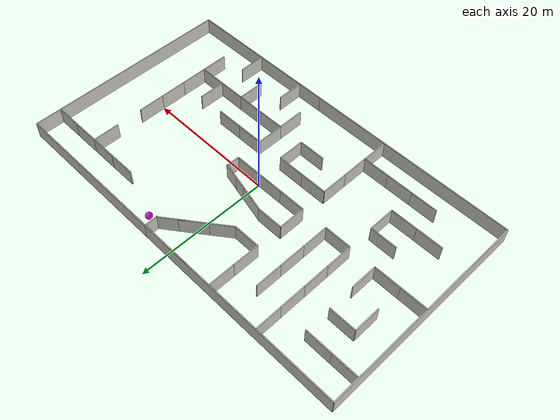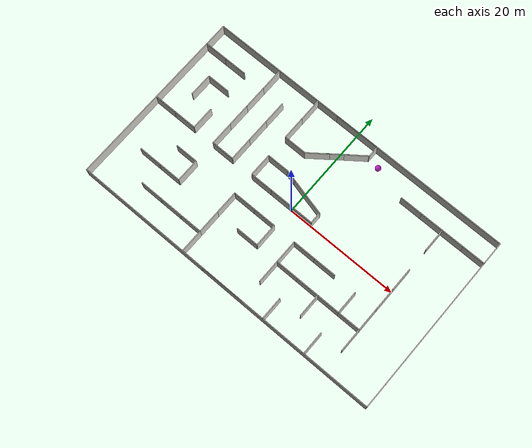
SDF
<sdf version="1.8">
 <world name="semantic_segmentation_world">
  <model name="maze_walls">
   <static>true</static>
   <link name="maze_wall_link">
    <collision name="w1_collision">
     <pose>28.000000 0.000147 1.250000 0.000000 0.000000 1.570800</pose>
     <geometry><box><size>32.000000 0.150000 2.500000</size></box></geometry>
     <surface><friction><ode><mu>1.0</mu><mu2>1.0</mu2></ode></friction></surface>
    </collision>
    <visual name="w1_visual">
     <pose>28.000000 0.000147 1.250000 0.000000 0.000000 1.570800</pose>
     <geometry><box><size>32.000000 0.150000 2.500000</size></box></geometry>
     <material>
      <ambient>0.5472 0.5472 0.5184 1.0</ambient>
      <diffuse>0.76 0.76 0.72 1.0</diffuse>
      <specular>0.04 0.04 0.04 1.0</specular>
     </material>
    </visual>
    <collision name="w2_collision">
     <pose>-28.000000 -0.000059 1.250000 0.000000 0.000000 1.570800</pose>
     <geometry><box><size>32.000000 0.150000 2.500000</size></box></geometry>
     <surface><friction><ode><mu>1.0</mu><mu2>1.0</mu2></ode></friction></surface>
    </collision>
    <visual name="w2_visual">
     <pose>-28.000000 -0.000059 1.250000 0.000000 0.000000 1.570800</pose>
     <geometry><box><size>32.000000 0.150000 2.500000</size></box></geometry>
     <material>
      <ambient>0.5472 0.5472 0.5184 1.0</ambient>
      <diffuse>0.76 0.76 0.72 1.0</diffuse>
      <specular>0.04 0.04 0.04 1.0</specular>
     </material>
    </visual>
    <collision name="w3_collision">
     <pose>-12.000059 16.000000 1.250000 0.000000 0.000000 3.141600</pose>
     <geometry><box><size>32.000000 0.150000 2.500000</size></box></geometry>
     <surface><friction><ode><mu>1.0</mu><mu2>1.0</mu2></ode></friction></surface>
    </collision>
    <visual name="w3_visual">
     <pose>-12.000059 16.000000 1.250000 0.000000 0.000000 3.141600</pose>
     <geometry><box><size>32.000000 0.150000 2.500000</size></box></geometry>
     <material>
      <ambient>0.5472 0.5472 0.5184 1.0</ambient>
      <diffuse>0.76 0.76 0.72 1.0</diffuse>
      <specular>0.04 0.04 0.04 1.0</specular>
     </material>
    </visual>
    <collision name="n1_collision">
     <pose>11.999941 16.000088 1.250000 0.000000 0.000000 3.141600</pose>
     <geometry><box><size>32.000000 0.150000 2.500000</size></box></geometry>
     <surface><friction><ode><mu>1.0</mu><mu2>1.0</mu2></ode></friction></surface>
    </collision>
    <visual name="n1_visual">
     <pose>11.999941 16.000088 1.250000 0.000000 0.000000 3.141600</pose>
     <geometry><box><size>32.000000 0.150000 2.500000</size></box></geometry>
     <material>
      <ambient>0.5472 0.5472 0.5184 1.0</ambient>
      <diffuse>0.76 0.76 0.72 1.0</diffuse>
      <specular>0.04 0.04 0.04 1.0</specular>
     </material>
    </visual>
    <collision name="w4_collision">
     <pose>-11.999941 -16.000000 1.250000 0.000000 0.000000 3.141600</pose>
     <geometry><box><size>32.000000 0.150000 2.500000</size></box></geometry>
     <surface><friction><ode><mu>1.0</mu><mu2>1.0</mu2></ode></friction></surface>
    </collision>
    <visual name="w4_visual">
     <pose>-11.999941 -16.000000 1.250000 0.000000 0.000000 3.141600</pose>
     <geometry><box><size>32.000000 0.150000 2.500000</size></box></geometry>
     <material>
      <ambient>0.5472 0.5472 0.5184 1.0</ambient>
      <diffuse>0.76 0.76 0.72 1.0</diffuse>
      <specular>0.04 0.04 0.04 1.0</specular>
     </material>
    </visual>
    <collision name="n2_collision">
     <pose>12.000059 -15.999912 1.250000 0.000000 0.000000 3.141600</pose>
     <geometry><box><size>32.000000 0.150000 2.500000</size></box></geometry>
     <surface><friction><ode><mu>1.0</mu><mu2>1.0</mu2></ode></friction></surface>
    </collision>
    <visual name="n2_visual">
     <pose>12.000059 -15.999912 1.250000 0.000000 0.000000 3.141600</pose>
     <geometry><box><size>32.000000 0.150000 2.500000</size></box></geometry>
     <material>
      <ambient>0.5472 0.5472 0.5184 1.0</ambient>
      <diffuse>0.76 0.76 0.72 1.0</diffuse>
      <specular>0.04 0.04 0.04 1.0</specular>
     </material>
    </visual>
    <collision name="w5_collision">
     <pose>-16.000051 13.999985 1.250000 0.000000 0.000000 1.570800</pose>
     <geometry><box><size>4.000000 0.150000 2.500000</size></box></geometry>
     <surface><friction><ode><mu>1.0</mu><mu2>1.0</mu2></ode></friction></surface>
    </collision>
    <visual name="w5_visual">
     <pose>-16.000051 13.999985 1.250000 0.000000 0.000000 1.570800</pose>
     <geometry><box><size>4.000000 0.150000 2.500000</size></box></geometry>
     <material>
      <ambient>0.5472 0.5472 0.5184 1.0</ambient>
      <diffuse>0.76 0.76 0.72 1.0</diffuse>
      <specular>0.04 0.04 0.04 1.0</specular>
     </material>
    </visual>
    <collision name="w6_collision">
     <pose>-16.000037 9.999985 1.250000 0.000000 0.000000 1.570800</pose>
     <geometry><box><size>4.000000 0.150000 2.500000</size></box></geometry>
     <surface><friction><ode><mu>1.0</mu><mu2>1.0</mu2></ode></friction></surface>
    </collision>
    <visual name="w6_visual">
     <pose>-16.000037 9.999985 1.250000 0.000000 0.000000 1.570800</pose>
     <geometry><box><size>4.000000 0.150000 2.500000</size></box></geometry>
     <material>
      <ambient>0.5472 0.5472 0.5184 1.0</ambient>
      <diffuse>0.76 0.76 0.72 1.0</diffuse>
      <specular>0.04 0.04 0.04 1.0</specular>
     </material>
    </visual>
    <collision name="w7_collision">
     <pose>-16.000022 5.999985 1.250000 0.000000 0.000000 1.570800</pose>
     <geometry><box><size>4.000000 0.150000 2.500000</size></box></geometry>
     <surface><friction><ode><mu>1.0</mu><mu2>1.0</mu2></ode></friction></surface>
    </collision>
    <visual name="w7_visual">
     <pose>-16.000022 5.999985 1.250000 0.000000 0.000000 1.570800</pose>
     <geometry><box><size>4.000000 0.150000 2.500000</size></box></geometry>
     <material>
      <ambient>0.5472 0.5472 0.5184 1.0</ambient>
      <diffuse>0.76 0.76 0.72 1.0</diffuse>
      <specular>0.04 0.04 0.04 1.0</specular>
     </material>
    </visual>
    <collision name="w8_collision">
     <pose>-16.000007 1.999985 1.250000 0.000000 0.000000 1.570800</pose>
     <geometry><box><size>4.000000 0.150000 2.500000</size></box></geometry>
     <surface><friction><ode><mu>1.0</mu><mu2>1.0</mu2></ode></friction></surface>
    </collision>
    <visual name="w8_visual">
     <pose>-16.000007 1.999985 1.250000 0.000000 0.000000 1.570800</pose>
     <geometry><box><size>4.000000 0.150000 2.500000</size></box></geometry>
     <material>
      <ambient>0.5472 0.5472 0.5184 1.0</ambient>
      <diffuse>0.76 0.76 0.72 1.0</diffuse>
      <specular>0.04 0.04 0.04 1.0</specular>
     </material>
    </visual>
    <collision name="w9_collision">
     <pose>-20.000007 1.999971 1.250000 0.000000 0.000000 1.570800</pose>
     <geometry><box><size>4.000000 0.150000 2.500000</size></box></geometry>
     <surface><friction><ode><mu>1.0</mu><mu2>1.0</mu2></ode></friction></surface>
    </collision>
    <visual name="w9_visual">
     <pose>-20.000007 1.999971 1.250000 0.000000 0.000000 1.570800</pose>
     <geometry><box><size>4.000000 0.150000 2.500000</size></box></geometry>
     <material>
      <ambient>0.5472 0.5472 0.5184 1.0</ambient>
      <diffuse>0.76 0.76 0.72 1.0</diffuse>
      <specular>0.04 0.04 0.04 1.0</specular>
     </material>
    </visual>
    <collision name="w10_collision">
     <pose>-24.000022 5.999956 1.250000 0.000000 0.000000 1.570800</pose>
     <geometry><box><size>4.000000 0.150000 2.500000</size></box></geometry>
     <surface><friction><ode><mu>1.0</mu><mu2>1.0</mu2></ode></friction></surface>
    </collision>
    <visual name="w10_visual">
     <pose>-24.000022 5.999956 1.250000 0.000000 0.000000 1.570800</pose>
     <geometry><box><size>4.000000 0.150000 2.500000</size></box></geometry>
     <material>
      <ambient>0.5472 0.5472 0.5184 1.0</ambient>
      <diffuse>0.76 0.76 0.72 1.0</diffuse>
      <specular>0.04 0.04 0.04 1.0</specular>
     </material>
    </visual>
    <collision name="w11_collision">
     <pose>-12.000007 2.000000 1.250000 0.000000 0.000000 1.570800</pose>
     <geometry><box><size>4.000000 0.150000 2.500000</size></box></geometry>
     <surface><friction><ode><mu>1.0</mu><mu2>1.0</mu2></ode></friction></surface>
    </collision>
    <visual name="w11_visual">
     <pose>-12.000007 2.000000 1.250000 0.000000 0.000000 1.570800</pose>
     <geometry><box><size>4.000000 0.150000 2.500000</size></box></geometry>
     <material>
      <ambient>0.5472 0.5472 0.5184 1.0</ambient>
      <diffuse>0.76 0.76 0.72 1.0</diffuse>
      <specular>0.04 0.04 0.04 1.0</specular>
     </material>
    </visual>
    <collision name="w12_collision">
     <pose>-12.000022 6.000000 1.250000 0.000000 0.000000 1.570800</pose>
     <geometry><box><size>4.000000 0.150000 2.500000</size></box></geometry>
     <surface><friction><ode><mu>1.0</mu><mu2>1.0</mu2></ode></friction></surface>
    </collision>
    <visual name="w12_visual">
     <pose>-12.000022 6.000000 1.250000 0.000000 0.000000 1.570800</pose>
     <geometry><box><size>4.000000 0.150000 2.500000</size></box></geometry>
     <material>
      <ambient>0.5472 0.5472 0.5184 1.0</ambient>
      <diffuse>0.76 0.76 0.72 1.0</diffuse>
      <specular>0.04 0.04 0.04 1.0</specular>
     </material>
    </visual>
    <collision name="w13_collision">
     <pose>-12.000037 10.000000 1.250000 0.000000 0.000000 1.570800</pose>
     <geometry><box><size>4.000000 0.150000 2.500000</size></box></geometry>
     <surface><friction><ode><mu>1.0</mu><mu2>1.0</mu2></ode></friction></surface>
    </collision>
    <visual name="w13_visual">
     <pose>-12.000037 10.000000 1.250000 0.000000 0.000000 1.570800</pose>
     <geometry><box><size>4.000000 0.150000 2.500000</size></box></geometry>
     <material>
      <ambient>0.5472 0.5472 0.5184 1.0</ambient>
      <diffuse>0.76 0.76 0.72 1.0</diffuse>
      <specular>0.04 0.04 0.04 1.0</specular>
     </material>
    </visual>
    <collision name="w14_collision">
     <pose>-8.000037 10.000015 1.250000 0.000000 0.000000 1.570800</pose>
     <geometry><box><size>4.000000 0.150000 2.500000</size></box></geometry>
     <surface><friction><ode><mu>1.0</mu><mu2>1.0</mu2></ode></friction></surface>
    </collision>
    <visual name="w14_visual">
     <pose>-8.000037 10.000015 1.250000 0.000000 0.000000 1.570800</pose>
     <geometry><box><size>4.000000 0.150000 2.500000</size></box></geometry>
     <material>
      <ambient>0.5472 0.5472 0.5184 1.0</ambient>
      <diffuse>0.76 0.76 0.72 1.0</diffuse>
      <specular>0.04 0.04 0.04 1.0</specular>
     </material>
    </visual>
    <collision name="w15_collision">
     <pose>-8.000051 14.000015 1.250000 0.000000 0.000000 1.570800</pose>
     <geometry><box><size>4.000000 0.150000 2.500000</size></box></geometry>
     <surface><friction><ode><mu>1.0</mu><mu2>1.0</mu2></ode></friction></surface>
    </collision>
    <visual name="w15_visual">
     <pose>-8.000051 14.000015 1.250000 0.000000 0.000000 1.570800</pose>
     <geometry><box><size>4.000000 0.150000 2.500000</size></box></geometry>
     <material>
      <ambient>0.5472 0.5472 0.5184 1.0</ambient>
      <diffuse>0.76 0.76 0.72 1.0</diffuse>
      <specular>0.04 0.04 0.04 1.0</specular>
     </material>
    </visual>
    <collision name="w16_collision">
     <pose>-8.000007 2.000015 1.250000 0.000000 0.000000 1.570800</pose>
     <geometry><box><size>4.000000 0.150000 2.500000</size></box></geometry>
     <surface><friction><ode><mu>1.0</mu><mu2>1.0</mu2></ode></friction></surface>
    </collision>
    <visual name="w16_visual">
     <pose>-8.000007 2.000015 1.250000 0.000000 0.000000 1.570800</pose>
     <geometry><box><size>4.000000 0.150000 2.500000</size></box></geometry>
     <material>
      <ambient>0.5472 0.5472 0.5184 1.0</ambient>
      <diffuse>0.76 0.76 0.72 1.0</diffuse>
      <specular>0.04 0.04 0.04 1.0</specular>
     </material>
    </visual>
    <collision name="w17_collision">
     <pose>0.000022 -5.999956 1.250000 0.000000 0.000000 1.570800</pose>
     <geometry><box><size>4.000000 0.150000 2.500000</size></box></geometry>
     <surface><friction><ode><mu>1.0</mu><mu2>1.0</mu2></ode></friction></surface>
    </collision>
    <visual name="w17_visual">
     <pose>0.000022 -5.999956 1.250000 0.000000 0.000000 1.570800</pose>
     <geometry><box><size>4.000000 0.150000 2.500000</size></box></geometry>
     <material>
      <ambient>0.5472 0.5472 0.5184 1.0</ambient>
      <diffuse>0.76 0.76 0.72 1.0</diffuse>
      <specular>0.04 0.04 0.04 1.0</specular>
     </material>
    </visual>
    <collision name="w18_collision">
     <pose>-7.999978 -5.999985 1.250000 0.000000 0.000000 1.570800</pose>
     <geometry><box><size>4.000000 0.150000 2.500000</size></box></geometry>
     <surface><friction><ode><mu>1.0</mu><mu2>1.0</mu2></ode></friction></surface>
    </collision>
    <visual name="w18_visual">
     <pose>-7.999978 -5.999985 1.250000 0.000000 0.000000 1.570800</pose>
     <geometry><box><size>4.000000 0.150000 2.500000</size></box></geometry>
     <material>
      <ambient>0.5472 0.5472 0.5184 1.0</ambient>
      <diffuse>0.76 0.76 0.72 1.0</diffuse>
      <specular>0.04 0.04 0.04 1.0</specular>
     </material>
    </visual>
    <collision name="w19_collision">
     <pose>-7.999963 -9.999985 1.250000 0.000000 0.000000 1.570800</pose>
     <geometry><box><size>4.000000 0.150000 2.500000</size></box></geometry>
     <surface><friction><ode><mu>1.0</mu><mu2>1.0</mu2></ode></friction></surface>
    </collision>
    <visual name="w19_visual">
     <pose>-7.999963 -9.999985 1.250000 0.000000 0.000000 1.570800</pose>
     <geometry><box><size>4.000000 0.150000 2.500000</size></box></geometry>
     <material>
      <ambient>0.5472 0.5472 0.5184 1.0</ambient>
      <diffuse>0.76 0.76 0.72 1.0</diffuse>
      <specular>0.04 0.04 0.04 1.0</specular>
     </material>
    </visual>
    <collision name="w20_collision">
     <pose>-7.999949 -13.999985 1.250000 0.000000 0.000000 1.570800</pose>
     <geometry><box><size>4.000000 0.150000 2.500000</size></box></geometry>
     <surface><friction><ode><mu>1.0</mu><mu2>1.0</mu2></ode></friction></surface>
    </collision>
    <visual name="w20_visual">
     <pose>-7.999949 -13.999985 1.250000 0.000000 0.000000 1.570800</pose>
     <geometry><box><size>4.000000 0.150000 2.500000</size></box></geometry>
     <material>
      <ambient>0.5472 0.5472 0.5184 1.0</ambient>
      <diffuse>0.76 0.76 0.72 1.0</diffuse>
      <specular>0.04 0.04 0.04 1.0</specular>
     </material>
    </visual>
    <collision name="w21_collision">
     <pose>-15.999978 -6.000015 1.250000 0.000000 0.000000 1.570800</pose>
     <geometry><box><size>4.000000 0.150000 2.500000</size></box></geometry>
     <surface><friction><ode><mu>1.0</mu><mu2>1.0</mu2></ode></friction></surface>
    </collision>
    <visual name="w21_visual">
     <pose>-15.999978 -6.000015 1.250000 0.000000 0.000000 1.570800</pose>
     <geometry><box><size>4.000000 0.150000 2.500000</size></box></geometry>
     <material>
      <ambient>0.5472 0.5472 0.5184 1.0</ambient>
      <diffuse>0.76 0.76 0.72 1.0</diffuse>
      <specular>0.04 0.04 0.04 1.0</specular>
     </material>
    </visual>
    <collision name="v1_collision">
     <pose>-14.000000 -0.000007 1.250000 0.000000 0.000000 3.141600</pose>
     <geometry><box><size>4.000000 0.150000 2.500000</size></box></geometry>
     <surface><friction><ode><mu>1.0</mu><mu2>1.0</mu2></ode></friction></surface>
    </collision>
    <visual name="v1_visual">
     <pose>-14.000000 -0.000007 1.250000 0.000000 0.000000 3.141600</pose>
     <geometry><box><size>4.000000 0.150000 2.500000</size></box></geometry>
     <material>
      <ambient>0.5472 0.5472 0.5184 1.0</ambient>
      <diffuse>0.76 0.76 0.72 1.0</diffuse>
      <specular>0.04 0.04 0.04 1.0</specular>
     </material>
    </visual>
    <collision name="v2_collision">
     <pose>-22.000000 -0.000037 1.250000 0.000000 0.000000 3.141600</pose>
     <geometry><box><size>4.000000 0.150000 2.500000</size></box></geometry>
     <surface><friction><ode><mu>1.0</mu><mu2>1.0</mu2></ode></friction></surface>
    </collision>
    <visual name="v2_visual">
     <pose>-22.000000 -0.000037 1.250000 0.000000 0.000000 3.141600</pose>
     <geometry><box><size>4.000000 0.150000 2.500000</size></box></geometry>
     <material>
      <ambient>0.5472 0.5472 0.5184 1.0</ambient>
      <diffuse>0.76 0.76 0.72 1.0</diffuse>
      <specular>0.04 0.04 0.04 1.0</specular>
     </material>
    </visual>
    <collision name="v3_collision">
     <pose>-26.000000 -0.000051 1.250000 0.000000 0.000000 3.141600</pose>
     <geometry><box><size>4.000000 0.150000 2.500000</size></box></geometry>
     <surface><friction><ode><mu>1.0</mu><mu2>1.0</mu2></ode></friction></surface>
    </collision>
    <visual name="v3_visual">
     <pose>-26.000000 -0.000051 1.250000 0.000000 0.000000 3.141600</pose>
     <geometry><box><size>4.000000 0.150000 2.500000</size></box></geometry>
     <material>
      <ambient>0.5472 0.5472 0.5184 1.0</ambient>
      <diffuse>0.76 0.76 0.72 1.0</diffuse>
      <specular>0.04 0.04 0.04 1.0</specular>
     </material>
    </visual>
    <collision name="v4_collision">
     <pose>-6.000000 0.000022 1.250000 0.000000 0.000000 3.141600</pose>
     <geometry><box><size>4.000000 0.150000 2.500000</size></box></geometry>
     <surface><friction><ode><mu>1.0</mu><mu2>1.0</mu2></ode></friction></surface>
    </collision>
    <visual name="v4_visual">
     <pose>-6.000000 0.000022 1.250000 0.000000 0.000000 3.141600</pose>
     <geometry><box><size>4.000000 0.150000 2.500000</size></box></geometry>
     <material>
      <ambient>0.5472 0.5472 0.5184 1.0</ambient>
      <diffuse>0.76 0.76 0.72 1.0</diffuse>
      <specular>0.04 0.04 0.04 1.0</specular>
     </material>
    </visual>
    <collision name="v5_collision">
     <pose>-6.000015 4.000022 1.250000 0.000000 0.000000 3.141600</pose>
     <geometry><box><size>4.000000 0.150000 2.500000</size></box></geometry>
     <surface><friction><ode><mu>1.0</mu><mu2>1.0</mu2></ode></friction></surface>
    </collision>
    <visual name="v5_visual">
     <pose>-6.000015 4.000022 1.250000 0.000000 0.000000 3.141600</pose>
     <geometry><box><size>4.000000 0.150000 2.500000</size></box></geometry>
     <material>
      <ambient>0.5472 0.5472 0.5184 1.0</ambient>
      <diffuse>0.76 0.76 0.72 1.0</diffuse>
      <specular>0.04 0.04 0.04 1.0</specular>
     </material>
    </visual>
    <collision name="v6_collision">
     <pose>-6.000029 8.000022 1.250000 0.000000 0.000000 3.141600</pose>
     <geometry><box><size>4.000000 0.150000 2.500000</size></box></geometry>
     <surface><friction><ode><mu>1.0</mu><mu2>1.0</mu2></ode></friction></surface>
    </collision>
    <visual name="v6_visual">
     <pose>-6.000029 8.000022 1.250000 0.000000 0.000000 3.141600</pose>
     <geometry><box><size>4.000000 0.150000 2.500000</size></box></geometry>
     <material>
      <ambient>0.5472 0.5472 0.5184 1.0</ambient>
      <diffuse>0.76 0.76 0.72 1.0</diffuse>
      <specular>0.04 0.04 0.04 1.0</specular>
     </material>
    </visual>
    <collision name="v7_collision">
     <pose>-5.999985 -3.999978 1.250000 0.000000 0.000000 3.141600</pose>
     <geometry><box><size>4.000000 0.150000 2.500000</size></box></geometry>
     <surface><friction><ode><mu>1.0</mu><mu2>1.0</mu2></ode></friction></surface>
    </collision>
    <visual name="v7_visual">
     <pose>-5.999985 -3.999978 1.250000 0.000000 0.000000 3.141600</pose>
     <geometry><box><size>4.000000 0.150000 2.500000</size></box></geometry>
     <material>
      <ambient>0.5472 0.5472 0.5184 1.0</ambient>
      <diffuse>0.76 0.76 0.72 1.0</diffuse>
      <specular>0.04 0.04 0.04 1.0</specular>
     </material>
    </visual>
    <collision name="v8_collision">
     <pose>-1.999971 -7.999963 1.250000 0.000000 0.000000 3.141600</pose>
     <geometry><box><size>4.000000 0.150000 2.500000</size></box></geometry>
     <surface><friction><ode><mu>1.0</mu><mu2>1.0</mu2></ode></friction></surface>
    </collision>
    <visual name="v8_visual">
     <pose>-1.999971 -7.999963 1.250000 0.000000 0.000000 3.141600</pose>
     <geometry><box><size>4.000000 0.150000 2.500000</size></box></geometry>
     <material>
      <ambient>0.5472 0.5472 0.5184 1.0</ambient>
      <diffuse>0.76 0.76 0.72 1.0</diffuse>
      <specular>0.04 0.04 0.04 1.0</specular>
     </material>
    </visual>
    <collision name="v9_collision">
     <pose>-1.999985 -3.999963 1.250000 0.000000 0.000000 3.141600</pose>
     <geometry><box><size>4.000000 0.150000 2.500000</size></box></geometry>
     <surface><friction><ode><mu>1.0</mu><mu2>1.0</mu2></ode></friction></surface>
    </collision>
    <visual name="v9_visual">
     <pose>-1.999985 -3.999963 1.250000 0.000000 0.000000 3.141600</pose>
     <geometry><box><size>4.000000 0.150000 2.500000</size></box></geometry>
     <material>
      <ambient>0.5472 0.5472 0.5184 1.0</ambient>
      <diffuse>0.76 0.76 0.72 1.0</diffuse>
      <specular>0.04 0.04 0.04 1.0</specular>
     </material>
    </visual>
    <collision name="v10_collision">
     <pose>-13.999956 -12.000007 1.250000 0.000000 0.000000 3.141600</pose>
     <geometry><box><size>4.000000 0.150000 2.500000</size></box></geometry>
     <surface><friction><ode><mu>1.0</mu><mu2>1.0</mu2></ode></friction></surface>
    </collision>
    <visual name="v10_visual">
     <pose>-13.999956 -12.000007 1.250000 0.000000 0.000000 3.141600</pose>
     <geometry><box><size>4.000000 0.150000 2.500000</size></box></geometry>
     <material>
      <ambient>0.5472 0.5472 0.5184 1.0</ambient>
      <diffuse>0.76 0.76 0.72 1.0</diffuse>
      <specular>0.04 0.04 0.04 1.0</specular>
     </material>
    </visual>
    <collision name="v11_collision">
     <pose>-17.999956 -12.000022 1.250000 0.000000 0.000000 3.141600</pose>
     <geometry><box><size>4.000000 0.150000 2.500000</size></box></geometry>
     <surface><friction><ode><mu>1.0</mu><mu2>1.0</mu2></ode></friction></surface>
    </collision>
    <visual name="v11_visual">
     <pose>-17.999956 -12.000022 1.250000 0.000000 0.000000 3.141600</pose>
     <geometry><box><size>4.000000 0.150000 2.500000</size></box></geometry>
     <material>
      <ambient>0.5472 0.5472 0.5184 1.0</ambient>
      <diffuse>0.76 0.76 0.72 1.0</diffuse>
      <specular>0.04 0.04 0.04 1.0</specular>
     </material>
    </visual>
    <collision name="v12_collision">
     <pose>-17.999971 -8.000022 1.250000 0.000000 0.000000 3.141600</pose>
     <geometry><box><size>4.000000 0.150000 2.500000</size></box></geometry>
     <surface><friction><ode><mu>1.0</mu><mu2>1.0</mu2></ode></friction></surface>
    </collision>
    <visual name="v12_visual">
     <pose>-17.999971 -8.000022 1.250000 0.000000 0.000000 3.141600</pose>
     <geometry><box><size>4.000000 0.150000 2.500000</size></box></geometry>
     <material>
      <ambient>0.5472 0.5472 0.5184 1.0</ambient>
      <diffuse>0.76 0.76 0.72 1.0</diffuse>
      <specular>0.04 0.04 0.04 1.0</specular>
     </material>
    </visual>
    <collision name="v13_collision">
     <pose>-17.999985 -4.000022 1.250000 0.000000 0.000000 3.141600</pose>
     <geometry><box><size>4.000000 0.150000 2.500000</size></box></geometry>
     <surface><friction><ode><mu>1.0</mu><mu2>1.0</mu2></ode></friction></surface>
    </collision>
    <visual name="v13_visual">
     <pose>-17.999985 -4.000022 1.250000 0.000000 0.000000 3.141600</pose>
     <geometry><box><size>4.000000 0.150000 2.500000</size></box></geometry>
     <material>
      <ambient>0.5472 0.5472 0.5184 1.0</ambient>
      <diffuse>0.76 0.76 0.72 1.0</diffuse>
      <specular>0.04 0.04 0.04 1.0</specular>
     </material>
    </visual>
    <collision name="v14_collision">
     <pose>-21.999971 -8.000037 1.250000 0.000000 0.000000 3.141600</pose>
     <geometry><box><size>4.000000 0.150000 2.500000</size></box></geometry>
     <surface><friction><ode><mu>1.0</mu><mu2>1.0</mu2></ode></friction></surface>
    </collision>
    <visual name="v14_visual">
     <pose>-21.999971 -8.000037 1.250000 0.000000 0.000000 3.141600</pose>
     <geometry><box><size>4.000000 0.150000 2.500000</size></box></geometry>
     <material>
      <ambient>0.5472 0.5472 0.5184 1.0</ambient>
      <diffuse>0.76 0.76 0.72 1.0</diffuse>
      <specular>0.04 0.04 0.04 1.0</specular>
     </material>
    </visual>
    <collision name="v15_collision">
     <pose>-9.999956 -11.999993 1.250000 0.000000 0.000000 3.141600</pose>
     <geometry><box><size>4.000000 0.150000 2.500000</size></box></geometry>
     <surface><friction><ode><mu>1.0</mu><mu2>1.0</mu2></ode></friction></surface>
    </collision>
    <visual name="v15_visual">
     <pose>-9.999956 -11.999993 1.250000 0.000000 0.000000 3.141600</pose>
     <geometry><box><size>4.000000 0.150000 2.500000</size></box></geometry>
     <material>
      <ambient>0.5472 0.5472 0.5184 1.0</ambient>
      <diffuse>0.76 0.76 0.72 1.0</diffuse>
      <specular>0.04 0.04 0.04 1.0</specular>
     </material>
    </visual>
    <collision name="v16_collision">
     <pose>-22.000029 7.999963 1.250000 0.000000 0.000000 3.141600</pose>
     <geometry><box><size>4.000000 0.150000 2.500000</size></box></geometry>
     <surface><friction><ode><mu>1.0</mu><mu2>1.0</mu2></ode></friction></surface>
    </collision>
    <visual name="v16_visual">
     <pose>-22.000029 7.999963 1.250000 0.000000 0.000000 3.141600</pose>
     <geometry><box><size>4.000000 0.150000 2.500000</size></box></geometry>
     <material>
      <ambient>0.5472 0.5472 0.5184 1.0</ambient>
      <diffuse>0.76 0.76 0.72 1.0</diffuse>
      <specular>0.04 0.04 0.04 1.0</specular>
     </material>
    </visual>
    <collision name="v17_collision">
     <pose>-22.000044 11.999963 1.250000 0.000000 0.000000 3.141600</pose>
     <geometry><box><size>4.000000 0.150000 2.500000</size></box></geometry>
     <surface><friction><ode><mu>1.0</mu><mu2>1.0</mu2></ode></friction></surface>
    </collision>
    <visual name="v17_visual">
     <pose>-22.000044 11.999963 1.250000 0.000000 0.000000 3.141600</pose>
     <geometry><box><size>4.000000 0.150000 2.500000</size></box></geometry>
     <material>
      <ambient>0.5472 0.5472 0.5184 1.0</ambient>
      <diffuse>0.76 0.76 0.72 1.0</diffuse>
      <specular>0.04 0.04 0.04 1.0</specular>
     </material>
    </visual>
    <collision name="v18_collision">
     <pose>-26.000044 11.999949 1.250000 0.000000 0.000000 3.141600</pose>
     <geometry><box><size>4.000000 0.150000 2.500000</size></box></geometry>
     <surface><friction><ode><mu>1.0</mu><mu2>1.0</mu2></ode></friction></surface>
    </collision>
    <visual name="v18_visual">
     <pose>-26.000044 11.999949 1.250000 0.000000 0.000000 3.141600</pose>
     <geometry><box><size>4.000000 0.150000 2.500000</size></box></geometry>
     <material>
      <ambient>0.5472 0.5472 0.5184 1.0</ambient>
      <diffuse>0.76 0.76 0.72 1.0</diffuse>
      <specular>0.04 0.04 0.04 1.0</specular>
     </material>
    </visual>
    <collision name="v19_collision">
     <pose>-22.000044 11.999963 1.250000 0.000000 0.000000 3.141600</pose>
     <geometry><box><size>4.000000 0.150000 2.500000</size></box></geometry>
     <surface><friction><ode><mu>1.0</mu><mu2>1.0</mu2></ode></friction></surface>
    </collision>
    <visual name="v19_visual">
     <pose>-22.000044 11.999963 1.250000 0.000000 0.000000 3.141600</pose>
     <geometry><box><size>4.000000 0.150000 2.500000</size></box></geometry>
     <material>
      <ambient>0.5472 0.5472 0.5184 1.0</ambient>
      <diffuse>0.76 0.76 0.72 1.0</diffuse>
      <specular>0.04 0.04 0.04 1.0</specular>
     </material>
    </visual>
    <collision name="v20_collision">
     <pose>6.000029 -7.999934 1.250000 0.000000 0.000000 3.141600</pose>
     <geometry><box><size>4.000000 0.150000 2.500000</size></box></geometry>
     <surface><friction><ode><mu>1.0</mu><mu2>1.0</mu2></ode></friction></surface>
    </collision>
    <visual name="v20_visual">
     <pose>6.000029 -7.999934 1.250000 0.000000 0.000000 3.141600</pose>
     <geometry><box><size>4.000000 0.150000 2.500000</size></box></geometry>
     <material>
      <ambient>0.5472 0.5472 0.5184 1.0</ambient>
      <diffuse>0.76 0.76 0.72 1.0</diffuse>
      <specular>0.04 0.04 0.04 1.0</specular>
     </material>
    </visual>
    <collision name="v21_collision">
     <pose>10.000029 -7.999919 1.250000 0.000000 0.000000 3.141600</pose>
     <geometry><box><size>4.000000 0.150000 2.500000</size></box></geometry>
     <surface><friction><ode><mu>1.0</mu><mu2>1.0</mu2></ode></friction></surface>
    </collision>
    <visual name="v21_visual">
     <pose>10.000029 -7.999919 1.250000 0.000000 0.000000 3.141600</pose>
     <geometry><box><size>4.000000 0.150000 2.500000</size></box></geometry>
     <material>
      <ambient>0.5472 0.5472 0.5184 1.0</ambient>
      <diffuse>0.76 0.76 0.72 1.0</diffuse>
      <specular>0.04 0.04 0.04 1.0</specular>
     </material>
    </visual>
    <collision name="n3_collision">
     <pose>-2.000000 0.000037 1.250000 0.000000 0.000000 3.141600</pose>
     <geometry><box><size>4.000000 0.150000 2.500000</size></box></geometry>
     <surface><friction><ode><mu>1.0</mu><mu2>1.0</mu2></ode></friction></surface>
    </collision>
    <visual name="n3_visual">
     <pose>-2.000000 0.000037 1.250000 0.000000 0.000000 3.141600</pose>
     <geometry><box><size>4.000000 0.150000 2.500000</size></box></geometry>
     <material>
      <ambient>0.5472 0.5472 0.5184 1.0</ambient>
      <diffuse>0.76 0.76 0.72 1.0</diffuse>
      <specular>0.04 0.04 0.04 1.0</specular>
     </material>
    </visual>
    <collision name="n4_collision">
     <pose>2.000000 0.000051 1.250000 0.000000 0.000000 3.141600</pose>
     <geometry><box><size>4.000000 0.150000 2.500000</size></box></geometry>
     <surface><friction><ode><mu>1.0</mu><mu2>1.0</mu2></ode></friction></surface>
    </collision>
    <visual name="n4_visual">
     <pose>2.000000 0.000051 1.250000 0.000000 0.000000 3.141600</pose>
     <geometry><box><size>4.000000 0.150000 2.500000</size></box></geometry>
     <material>
      <ambient>0.5472 0.5472 0.5184 1.0</ambient>
      <diffuse>0.76 0.76 0.72 1.0</diffuse>
      <specular>0.04 0.04 0.04 1.0</specular>
     </material>
    </visual>
    <collision name="n5_collision">
     <pose>6.000015 -3.999934 1.250000 0.000000 0.000000 3.141600</pose>
     <geometry><box><size>4.000000 0.150000 2.500000</size></box></geometry>
     <surface><friction><ode><mu>1.0</mu><mu2>1.0</mu2></ode></friction></surface>
    </collision>
    <visual name="n5_visual">
     <pose>6.000015 -3.999934 1.250000 0.000000 0.000000 3.141600</pose>
     <geometry><box><size>4.000000 0.150000 2.500000</size></box></geometry>
     <material>
      <ambient>0.5472 0.5472 0.5184 1.0</ambient>
      <diffuse>0.76 0.76 0.72 1.0</diffuse>
      <specular>0.04 0.04 0.04 1.0</specular>
     </material>
    </visual>
    <collision name="n6_collision">
     <pose>10.000015 -3.999919 1.250000 0.000000 0.000000 3.141600</pose>
     <geometry><box><size>4.000000 0.150000 2.500000</size></box></geometry>
     <surface><friction><ode><mu>1.0</mu><mu2>1.0</mu2></ode></friction></surface>
    </collision>
    <visual name="n6_visual">
     <pose>10.000015 -3.999919 1.250000 0.000000 0.000000 3.141600</pose>
     <geometry><box><size>4.000000 0.150000 2.500000</size></box></geometry>
     <material>
      <ambient>0.5472 0.5472 0.5184 1.0</ambient>
      <diffuse>0.76 0.76 0.72 1.0</diffuse>
      <specular>0.04 0.04 0.04 1.0</specular>
     </material>
    </visual>
    <collision name="n7_collision">
     <pose>14.000029 -7.999904 1.250000 0.000000 0.000000 3.141600</pose>
     <geometry><box><size>4.000000 0.150000 2.500000</size></box></geometry>
     <surface><friction><ode><mu>1.0</mu><mu2>1.0</mu2></ode></friction></surface>
    </collision>
    <visual name="n7_visual">
     <pose>14.000029 -7.999904 1.250000 0.000000 0.000000 3.141600</pose>
     <geometry><box><size>4.000000 0.150000 2.500000</size></box></geometry>
     <material>
      <ambient>0.5472 0.5472 0.5184 1.0</ambient>
      <diffuse>0.76 0.76 0.72 1.0</diffuse>
      <specular>0.04 0.04 0.04 1.0</specular>
     </material>
    </visual>
    <collision name="n8_collision">
     <pose>18.000029 -7.999890 1.250000 0.000000 0.000000 3.141600</pose>
     <geometry><box><size>4.000000 0.150000 2.500000</size></box></geometry>
     <surface><friction><ode><mu>1.0</mu><mu2>1.0</mu2></ode></friction></surface>
    </collision>
    <visual name="n8_visual">
     <pose>18.000029 -7.999890 1.250000 0.000000 0.000000 3.141600</pose>
     <geometry><box><size>4.000000 0.150000 2.500000</size></box></geometry>
     <material>
      <ambient>0.5472 0.5472 0.5184 1.0</ambient>
      <diffuse>0.76 0.76 0.72 1.0</diffuse>
      <specular>0.04 0.04 0.04 1.0</specular>
     </material>
    </visual>
    <collision name="n11_collision">
     <pose>17.999956 12.000110 1.250000 0.000000 0.000000 3.141600</pose>
     <geometry><box><size>4.000000 0.150000 2.500000</size></box></geometry>
     <surface><friction><ode><mu>1.0</mu><mu2>1.0</mu2></ode></friction></surface>
    </collision>
    <visual name="n11_visual">
     <pose>17.999956 12.000110 1.250000 0.000000 0.000000 3.141600</pose>
     <geometry><box><size>4.000000 0.150000 2.500000</size></box></geometry>
     <material>
      <ambient>0.5472 0.5472 0.5184 1.0</ambient>
      <diffuse>0.76 0.76 0.72 1.0</diffuse>
      <specular>0.04 0.04 0.04 1.0</specular>
     </material>
    </visual>
    <collision name="n12_collision">
     <pose>13.999956 12.000096 1.250000 0.000000 0.000000 3.141600</pose>
     <geometry><box><size>4.000000 0.150000 2.500000</size></box></geometry>
     <surface><friction><ode><mu>1.0</mu><mu2>1.0</mu2></ode></friction></surface>
    </collision>
    <visual name="n12_visual">
     <pose>13.999956 12.000096 1.250000 0.000000 0.000000 3.141600</pose>
     <geometry><box><size>4.000000 0.150000 2.500000</size></box></geometry>
     <material>
      <ambient>0.5472 0.5472 0.5184 1.0</ambient>
      <diffuse>0.76 0.76 0.72 1.0</diffuse>
      <specular>0.04 0.04 0.04 1.0</specular>
     </material>
    </visual>
    <collision name="n13_collision">
     <pose>21.999956 12.000125 1.250000 0.000000 0.000000 3.141600</pose>
     <geometry><box><size>4.000000 0.150000 2.500000</size></box></geometry>
     <surface><friction><ode><mu>1.0</mu><mu2>1.0</mu2></ode></friction></surface>
    </collision>
    <visual name="n13_visual">
     <pose>21.999956 12.000125 1.250000 0.000000 0.000000 3.141600</pose>
     <geometry><box><size>4.000000 0.150000 2.500000</size></box></geometry>
     <material>
      <ambient>0.5472 0.5472 0.5184 1.0</ambient>
      <diffuse>0.76 0.76 0.72 1.0</diffuse>
      <specular>0.04 0.04 0.04 1.0</specular>
     </material>
    </visual>
    <collision name="n14_collision">
     <pose>25.999956 12.000140 1.250000 0.000000 0.000000 3.141600</pose>
     <geometry><box><size>4.000000 0.150000 2.500000</size></box></geometry>
     <surface><friction><ode><mu>1.0</mu><mu2>1.0</mu2></ode></friction></surface>
    </collision>
    <visual name="n14_visual">
     <pose>25.999956 12.000140 1.250000 0.000000 0.000000 3.141600</pose>
     <geometry><box><size>4.000000 0.150000 2.500000</size></box></geometry>
     <material>
      <ambient>0.5472 0.5472 0.5184 1.0</ambient>
      <diffuse>0.76 0.76 0.72 1.0</diffuse>
      <specular>0.04 0.04 0.04 1.0</specular>
     </material>
    </visual>
    <collision name="n15_collision">
     <pose>20.000037 -9.999882 1.250000 0.000000 0.000000 1.570800</pose>
     <geometry><box><size>4.000000 0.150000 2.500000</size></box></geometry>
     <surface><friction><ode><mu>1.0</mu><mu2>1.0</mu2></ode></friction></surface>
    </collision>
    <visual name="n15_visual">
     <pose>20.000037 -9.999882 1.250000 0.000000 0.000000 1.570800</pose>
     <geometry><box><size>4.000000 0.150000 2.500000</size></box></geometry>
     <material>
      <ambient>0.5472 0.5472 0.5184 1.0</ambient>
      <diffuse>0.76 0.76 0.72 1.0</diffuse>
      <specular>0.04 0.04 0.04 1.0</specular>
     </material>
    </visual>
    <collision name="n16_collision">
     <pose>20.000022 -5.999882 1.250000 0.000000 0.000000 1.570800</pose>
     <geometry><box><size>4.000000 0.150000 2.500000</size></box></geometry>
     <surface><friction><ode><mu>1.0</mu><mu2>1.0</mu2></ode></friction></surface>
    </collision>
    <visual name="n16_visual">
     <pose>20.000022 -5.999882 1.250000 0.000000 0.000000 1.570800</pose>
     <geometry><box><size>4.000000 0.150000 2.500000</size></box></geometry>
     <material>
      <ambient>0.5472 0.5472 0.5184 1.0</ambient>
      <diffuse>0.76 0.76 0.72 1.0</diffuse>
      <specular>0.04 0.04 0.04 1.0</specular>
     </material>
    </visual>
    <collision name="n17_collision">
     <pose>20.000007 -1.999882 1.250000 0.000000 0.000000 1.570800</pose>
     <geometry><box><size>4.000000 0.150000 2.500000</size></box></geometry>
     <surface><friction><ode><mu>1.0</mu><mu2>1.0</mu2></ode></friction></surface>
    </collision>
    <visual name="n17_visual">
     <pose>20.000007 -1.999882 1.250000 0.000000 0.000000 1.570800</pose>
     <geometry><box><size>4.000000 0.150000 2.500000</size></box></geometry>
     <material>
      <ambient>0.5472 0.5472 0.5184 1.0</ambient>
      <diffuse>0.76 0.76 0.72 1.0</diffuse>
      <specular>0.04 0.04 0.04 1.0</specular>
     </material>
    </visual>
    <collision name="n18_collision">
     <pose>19.999993 2.000118 1.250000 0.000000 0.000000 1.570800</pose>
     <geometry><box><size>4.000000 0.150000 2.500000</size></box></geometry>
     <surface><friction><ode><mu>1.0</mu><mu2>1.0</mu2></ode></friction></surface>
    </collision>
    <visual name="n18_visual">
     <pose>19.999993 2.000118 1.250000 0.000000 0.000000 1.570800</pose>
     <geometry><box><size>4.000000 0.150000 2.500000</size></box></geometry>
     <material>
      <ambient>0.5472 0.5472 0.5184 1.0</ambient>
      <diffuse>0.76 0.76 0.72 1.0</diffuse>
      <specular>0.04 0.04 0.04 1.0</specular>
     </material>
    </visual>
    <collision name="n19_collision">
     <pose>19.999963 10.000118 1.250000 0.000000 0.000000 1.570800</pose>
     <geometry><box><size>4.000000 0.150000 2.500000</size></box></geometry>
     <surface><friction><ode><mu>1.0</mu><mu2>1.0</mu2></ode></friction></surface>
    </collision>
    <visual name="n19_visual">
     <pose>19.999963 10.000118 1.250000 0.000000 0.000000 1.570800</pose>
     <geometry><box><size>4.000000 0.150000 2.500000</size></box></geometry>
     <material>
      <ambient>0.5472 0.5472 0.5184 1.0</ambient>
      <diffuse>0.76 0.76 0.72 1.0</diffuse>
      <specular>0.04 0.04 0.04 1.0</specular>
     </material>
    </visual>
    <collision name="n20_collision">
     <pose>12.000037 -9.999912 1.250000 0.000000 0.000000 1.570800</pose>
     <geometry><box><size>4.000000 0.150000 2.500000</size></box></geometry>
     <surface><friction><ode><mu>1.0</mu><mu2>1.0</mu2></ode></friction></surface>
    </collision>
    <visual name="n20_visual">
     <pose>12.000037 -9.999912 1.250000 0.000000 0.000000 1.570800</pose>
     <geometry><box><size>4.000000 0.150000 2.500000</size></box></geometry>
     <material>
      <ambient>0.5472 0.5472 0.5184 1.0</ambient>
      <diffuse>0.76 0.76 0.72 1.0</diffuse>
      <specular>0.04 0.04 0.04 1.0</specular>
     </material>
    </visual>
    <collision name="n21_collision">
     <pose>16.000022 -5.999897 1.250000 0.000000 0.000000 1.570800</pose>
     <geometry><box><size>4.000000 0.150000 2.500000</size></box></geometry>
     <surface><friction><ode><mu>1.0</mu><mu2>1.0</mu2></ode></friction></surface>
    </collision>
    <visual name="n21_visual">
     <pose>16.000022 -5.999897 1.250000 0.000000 0.000000 1.570800</pose>
     <geometry><box><size>4.000000 0.150000 2.500000</size></box></geometry>
     <material>
      <ambient>0.5472 0.5472 0.5184 1.0</ambient>
      <diffuse>0.76 0.76 0.72 1.0</diffuse>
      <specular>0.04 0.04 0.04 1.0</specular>
     </material>
    </visual>
    <collision name="n22_collision">
     <pose>4.000037 -9.999941 1.250000 0.000000 0.000000 1.570800</pose>
     <geometry><box><size>4.000000 0.150000 2.500000</size></box></geometry>
     <surface><friction><ode><mu>1.0</mu><mu2>1.0</mu2></ode></friction></surface>
    </collision>
    <visual name="n22_visual">
     <pose>4.000037 -9.999941 1.250000 0.000000 0.000000 1.570800</pose>
     <geometry><box><size>4.000000 0.150000 2.500000</size></box></geometry>
     <material>
      <ambient>0.5472 0.5472 0.5184 1.0</ambient>
      <diffuse>0.76 0.76 0.72 1.0</diffuse>
      <specular>0.04 0.04 0.04 1.0</specular>
     </material>
    </visual>
    <collision name="n23_collision">
     <pose>4.000022 -5.999941 1.250000 0.000000 0.000000 1.570800</pose>
     <geometry><box><size>4.000000 0.150000 2.500000</size></box></geometry>
     <surface><friction><ode><mu>1.0</mu><mu2>1.0</mu2></ode></friction></surface>
    </collision>
    <visual name="n23_visual">
     <pose>4.000022 -5.999941 1.250000 0.000000 0.000000 1.570800</pose>
     <geometry><box><size>4.000000 0.150000 2.500000</size></box></geometry>
     <material>
      <ambient>0.5472 0.5472 0.5184 1.0</ambient>
      <diffuse>0.76 0.76 0.72 1.0</diffuse>
      <specular>0.04 0.04 0.04 1.0</specular>
     </material>
    </visual>
    <collision name="n24_collision">
     <pose>-2.500034 9.180035 1.250000 0.000000 0.000000 0.650800</pose>
     <geometry><box><size>4.000000 0.150000 2.500000</size></box></geometry>
     <surface><friction><ode><mu>1.0</mu><mu2>1.0</mu2></ode></friction></surface>
    </collision>
    <visual name="n24_visual">
     <pose>-2.500034 9.180035 1.250000 0.000000 0.000000 0.650800</pose>
     <geometry><box><size>4.000000 0.150000 2.500000</size></box></geometry>
     <material>
      <ambient>0.5472 0.5472 0.5184 1.0</ambient>
      <diffuse>0.76 0.76 0.72 1.0</diffuse>
      <specular>0.04 0.04 0.04 1.0</specular>
     </material>
    </visual>
    <collision name="n25_collision">
     <pose>0.199959 11.250045 1.250000 0.000000 0.000000 0.650800</pose>
     <geometry><box><size>4.000000 0.150000 2.500000</size></box></geometry>
     <surface><friction><ode><mu>1.0</mu><mu2>1.0</mu2></ode></friction></surface>
    </collision>
    <visual name="n25_visual">
     <pose>0.199959 11.250045 1.250000 0.000000 0.000000 0.650800</pose>
     <geometry><box><size>4.000000 0.150000 2.500000</size></box></geometry>
     <material>
      <ambient>0.5472 0.5472 0.5184 1.0</ambient>
      <diffuse>0.76 0.76 0.72 1.0</diffuse>
      <specular>0.04 0.04 0.04 1.0</specular>
     </material>
    </visual>
    <collision name="n26_collision">
     <pose>2.449952 12.950053 1.250000 0.000000 0.000000 0.650800</pose>
     <geometry><box><size>4.000000 0.150000 2.500000</size></box></geometry>
     <surface><friction><ode><mu>1.0</mu><mu2>1.0</mu2></ode></friction></surface>
    </collision>
    <visual name="n26_visual">
     <pose>2.449952 12.950053 1.250000 0.000000 0.000000 0.650800</pose>
     <geometry><box><size>4.000000 0.150000 2.500000</size></box></geometry>
     <material>
      <ambient>0.5472 0.5472 0.5184 1.0</ambient>
      <diffuse>0.76 0.76 0.72 1.0</diffuse>
      <specular>0.04 0.04 0.04 1.0</specular>
     </material>
    </visual>
    <collision name="n28_collision">
     <pose>-2.150013 3.500036 1.250000 0.000000 0.000000 2.900800</pose>
     <geometry><box><size>4.000000 0.150000 2.500000</size></box></geometry>
     <surface><friction><ode><mu>1.0</mu><mu2>1.0</mu2></ode></friction></surface>
    </collision>
    <visual name="n28_visual">
     <pose>-2.150013 3.500036 1.250000 0.000000 0.000000 2.900800</pose>
     <geometry><box><size>4.000000 0.150000 2.500000</size></box></geometry>
     <material>
      <ambient>0.5472 0.5472 0.5184 1.0</ambient>
      <diffuse>0.76 0.76 0.72 1.0</diffuse>
      <specular>0.04 0.04 0.04 1.0</specular>
     </material>
    </visual>
    <collision name="n29_collision">
     <pose>-0.350011 3.050043 1.250000 0.000000 0.000000 2.900800</pose>
     <geometry><box><size>4.000000 0.150000 2.500000</size></box></geometry>
     <surface><friction><ode><mu>1.0</mu><mu2>1.0</mu2></ode></friction></surface>
    </collision>
    <visual name="n29_visual">
     <pose>-0.350011 3.050043 1.250000 0.000000 0.000000 2.900800</pose>
     <geometry><box><size>4.000000 0.150000 2.500000</size></box></geometry>
     <material>
      <ambient>0.5472 0.5472 0.5184 1.0</ambient>
      <diffuse>0.76 0.76 0.72 1.0</diffuse>
      <specular>0.04 0.04 0.04 1.0</specular>
     </material>
    </visual>
    <collision name="n30_collision">
     <pose>2.149991 2.430052 1.250000 0.000000 0.000000 2.900800</pose>
     <geometry><box><size>4.000000 0.150000 2.500000</size></box></geometry>
     <surface><friction><ode><mu>1.0</mu><mu2>1.0</mu2></ode></friction></surface>
    </collision>
    <visual name="n30_visual">
     <pose>2.149991 2.430052 1.250000 0.000000 0.000000 2.900800</pose>
     <geometry><box><size>4.000000 0.150000 2.500000</size></box></geometry>
     <material>
      <ambient>0.5472 0.5472 0.5184 1.0</ambient>
      <diffuse>0.76 0.76 0.72 1.0</diffuse>
      <specular>0.04 0.04 0.04 1.0</specular>
     </material>
    </visual>
    <collision name="n31_collision">
     <pose>16.000051 -13.999897 1.250000 0.000000 0.000000 1.570800</pose>
     <geometry><box><size>4.000000 0.150000 2.500000</size></box></geometry>
     <surface><friction><ode><mu>1.0</mu><mu2>1.0</mu2></ode></friction></surface>
    </collision>
    <visual name="n31_visual">
     <pose>16.000051 -13.999897 1.250000 0.000000 0.000000 1.570800</pose>
     <geometry><box><size>4.000000 0.150000 2.500000</size></box></geometry>
     <material>
      <ambient>0.5472 0.5472 0.5184 1.0</ambient>
      <diffuse>0.76 0.76 0.72 1.0</diffuse>
      <specular>0.04 0.04 0.04 1.0</specular>
     </material>
    </visual>
    <collision name="n32_collision">
     <pose>8.000051 -13.999927 1.250000 0.000000 0.000000 1.570800</pose>
     <geometry><box><size>4.000000 0.150000 2.500000</size></box></geometry>
     <surface><friction><ode><mu>1.0</mu><mu2>1.0</mu2></ode></friction></surface>
    </collision>
    <visual name="n32_visual">
     <pose>8.000051 -13.999927 1.250000 0.000000 0.000000 1.570800</pose>
     <geometry><box><size>4.000000 0.150000 2.500000</size></box></geometry>
     <material>
      <ambient>0.5472 0.5472 0.5184 1.0</ambient>
      <diffuse>0.76 0.76 0.72 1.0</diffuse>
      <specular>0.04 0.04 0.04 1.0</specular>
     </material>
    </visual>
    <collision name="h1_collision">
     <pose>3.999996 1.000059 1.250000 0.000000 0.000000 1.570800</pose>
     <geometry><box><size>2.000000 0.150000 2.500000</size></box></geometry>
     <surface><friction><ode><mu>1.0</mu><mu2>1.0</mu2></ode></friction></surface>
    </collision>
    <visual name="h1_visual">
     <pose>3.999996 1.000059 1.250000 0.000000 0.000000 1.570800</pose>
     <geometry><box><size>2.000000 0.150000 2.500000</size></box></geometry>
     <material>
      <ambient>0.5472 0.5472 0.5184 1.0</ambient>
      <diffuse>0.76 0.76 0.72 1.0</diffuse>
      <specular>0.04 0.04 0.04 1.0</specular>
     </material>
    </visual>
    <collision name="h2_collision">
     <pose>3.999945 15.000059 1.250000 0.000000 0.000000 1.570800</pose>
     <geometry><box><size>2.000000 0.150000 2.500000</size></box></geometry>
     <surface><friction><ode><mu>1.0</mu><mu2>1.0</mu2></ode></friction></surface>
    </collision>
    <visual name="h2_visual">
     <pose>3.999945 15.000059 1.250000 0.000000 0.000000 1.570800</pose>
     <geometry><box><size>2.000000 0.150000 2.500000</size></box></geometry>
     <material>
      <ambient>0.5472 0.5472 0.5184 1.0</ambient>
      <diffuse>0.76 0.76 0.72 1.0</diffuse>
      <specular>0.04 0.04 0.04 1.0</specular>
     </material>
    </visual>
   </link>
   <plugin filename="ignition-gazebo-label-system" name="ignition::gazebo::systems::Label">
    <label>13</label>
   </plugin>
  </model>
  <model name="dynamic_north_sphere">
   <static>true</static>
   <pose>6.000000 14.000000 0.612843 0.000000 0.000000 0.000000</pose>
   <link name="body">
    <collision name="body_collision">
     <geometry><sphere><radius>0.500000</radius></sphere></geometry>
     <surface><friction><ode><mu>1.1</mu><mu2>1.1</mu2></ode></friction></surface>
    </collision>
    <visual name="body_visual">
     <geometry><sphere><radius>0.500000</radius></sphere></geometry>
     <material>
      <ambient>0.8 0.1 0.82 1.0</ambient>
      <diffuse>0.8 0.1 0.82 1.0</diffuse>
      <specular>0.04 0.04 0.04 1</specular>
     </material>
    </visual>
   </link>
   <plugin filename="ignition-gazebo-label-system" name="ignition::gazebo::systems::Label">
    <label>6</label>
   </plugin>
   <plugin filename="libssmi_periodic_motion_system.so" name="semantic_segmentation_husky::PeriodicMotionSystem">
    <offset>4.000000 0.000000 0.000000</offset>
    <period>18.000000</period>
    <phase>3.000000</phase>
   </plugin>
  </model>
 </world>
</sdf>
